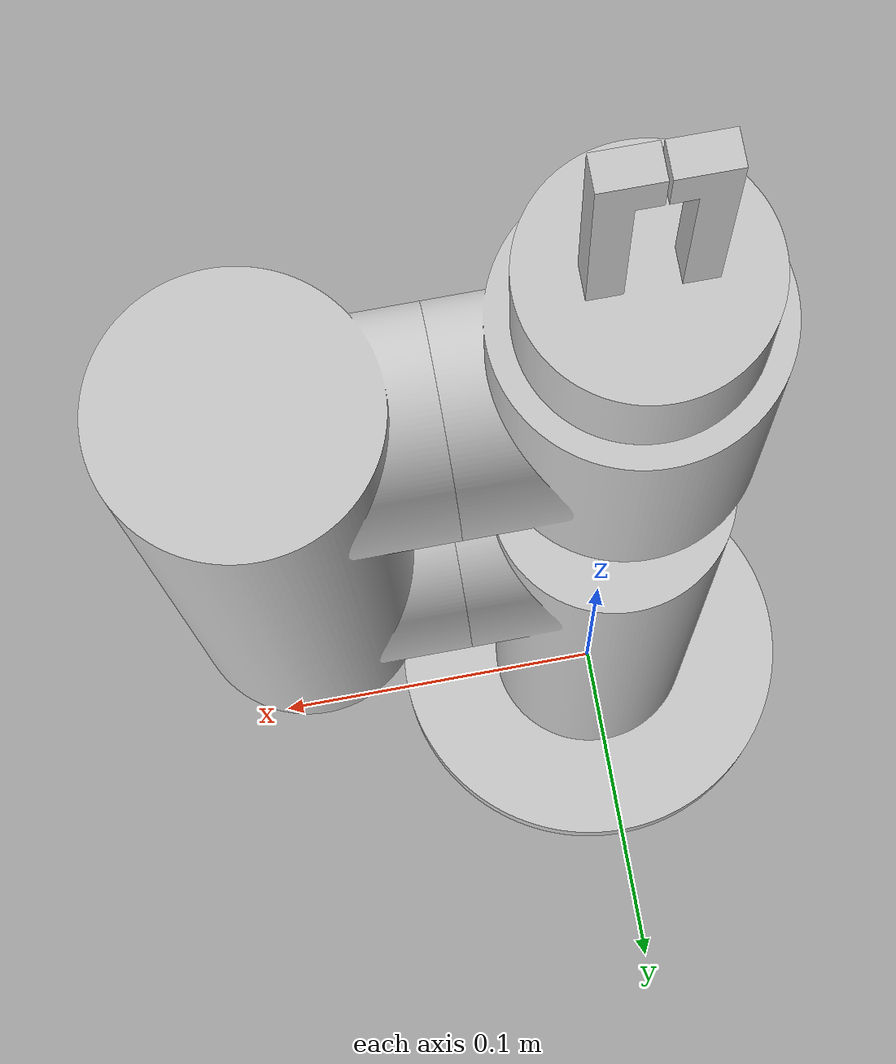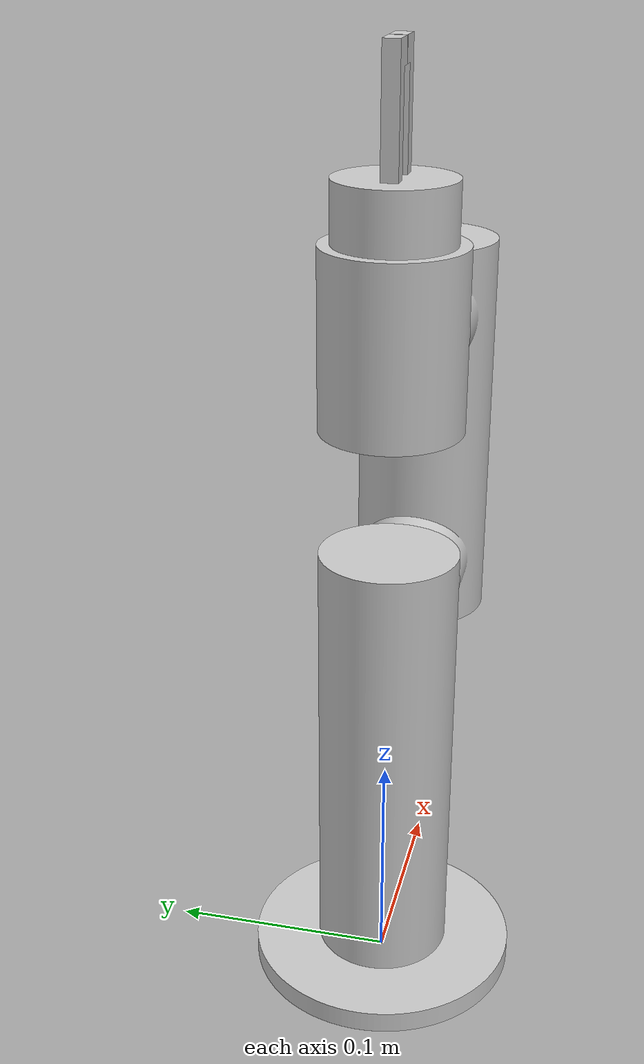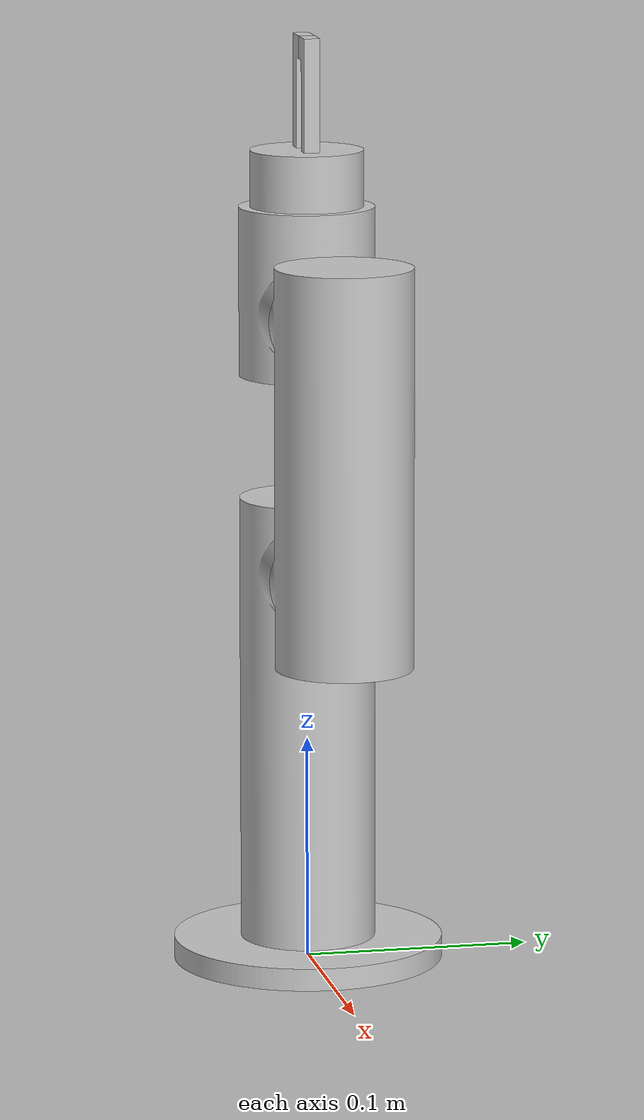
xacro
<?xml version="1.0" ?>
<robot name="manipulator_3r" xmlns:xacro="http://ros.org/wiki/xacro">
  <!--Generated by CROSS, a ROS Workbench for FreeCAD (https://github.com/galou/freecad.cross)-->
  <link name="world"/>
  <xacro:include filename="$(find robots_description)/urdf/gripper_macro.xacro"/>
  <xacro:gripper prefix=""/>
  <joint name="forearm_to_hand" type="fixed">
    <parent link="forearm"/>
    <child link="hand"/>
    <origin rpy="-0.0 1.5707963267948966 0.0" xyz="0.04 0.0 0.04"/>
  </joint>
  <xacro:include filename="$(find robots_description)/urdf/robot_3r_macro.xacro"/>
  <xacro:robot_3r prefix=""/>
  <joint name="world_to_base" type="fixed">
    <parent link="world"/>
    <child link="base"/>
    <origin rpy="0.0 -0.0 0.0" xyz="0.0 0.0 0.0"/>
  </joint>
</robot>

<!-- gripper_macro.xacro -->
<robot xmlns:xacro="http://www.ros.org/wiki/xacro">

  <xacro:macro name="gripper" params="prefix">

	  <link name="${prefix}hand">
	    <visual>
	      <!--hand_3r-->
	      <origin rpy="0.0 -0.0 0.0" xyz="0.0 0.0 0.0"/>
	      <geometry>
		<mesh filename="package://robots_description/meshes/hand_3r.dae"/>
	      </geometry>
	    </visual>
	    <inertial>
	      <mass value="0.0"/>
	      <origin rpy="0.0 -0.0 0.0" xyz="0.0 0.0 0.0"/>
	      <inertia ixx="0.0" ixy="0.0" ixz="0.0" iyy="0.0" iyz="0.0" izz="0.0"/>
	    </inertial>
	  </link>
	  <link name="${prefix}left_finger">
	    <visual>
	      <!--finger_3r-->
	      <origin rpy="3.141592653589793 1.5707963267948966 0.0" xyz="0.0 -0.0035 -0.03"/>
	      <geometry>
		<mesh filename="package://robots_description/meshes/finger_3r.dae"/>
	      </geometry>
	    </visual>
	    <inertial>
	      <mass value="0.0"/>
	      <origin rpy="0.0 -0.0 0.0" xyz="0.0 0.0 0.0"/>
	      <inertia ixx="0.0" ixy="0.0" ixz="0.0" iyy="0.0" iyz="0.0" izz="0.0"/>
	    </inertial>
	  </link>
	  <link name="${prefix}right_finger">
	    <visual>
	      <!--finger_3r-->
	      <origin rpy="-0.0 1.5707963267948966 0.0" xyz="0.0 0.0035 -0.03"/>
	      <geometry>
		<mesh filename="package://robots_description/meshes/finger_3r.dae"/>
	      </geometry>
	    </visual>
	    <inertial>
	      <mass value="0.0"/>
	      <origin rpy="0.0 -0.0 0.0" xyz="0.0 0.0 0.0"/>
	      <inertia ixx="0.0" ixy="0.0" ixz="0.0" iyy="0.0" iyz="0.0" izz="0.0"/>
	    </inertial>
	  </link>
	  <joint name="${prefix}hand_left_finger" type="prismatic">
	    <parent link="${prefix}hand"/>
	    <child link="${prefix}left_finger"/>
	    <origin rpy="-0.0 1.5707963267948966 0.0" xyz="0.0 0.0 0.03"/>
	    <axis xyz="0 0 1"/>
	    <limit effort="0.0" lower="0.0" upper="0.0" velocity="0.0"/>
	  </joint>
	  <joint name="${prefix}hand_right_finger" type="prismatic">
	    <parent link="${prefix}hand"/>
	    <child link="${prefix}right_finger"/>
	    <origin rpy="-0.0 -1.5707963267948961 0.0" xyz="0.0 0.0 0.03"/>
	    <axis xyz="0 0 1"/>
	    <limit effort="0.0" lower="0.0" upper="0.0" velocity="0.0"/>
	    <mimic joint="${prefix}hand_left_finger" multiplier="1.0" offset="0.0"/>
	  </joint>

    </xacro:macro>

</robot>

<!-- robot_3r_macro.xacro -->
<robot xmlns:xacro="http://www.ros.org/wiki/xacro">

  <xacro:macro name="robot_3r" params="prefix">

	  <link name="${prefix}base">
	    <visual>
	      <!--base_3r-->
	      <origin rpy="0.0 -0.0 0.0" xyz="0.0 0.0 0.0"/>
	      <geometry>
		<mesh filename="package://robots_description/meshes/base_3r.dae"/>
	      </geometry>
	    </visual>
	    <inertial>
	      <mass value="0.0"/>
	      <origin rpy="0.0 -0.0 0.0" xyz="0.0 0.0 0.0"/>
	      <inertia ixx="0.0" ixy="0.0" ixz="0.0" iyy="0.0" iyz="0.0" izz="0.0"/>
	    </inertial>
	  </link>
	  <link name="${prefix}shoulder">
	    <visual>
	      <!--shoulder_3r-->
	      <origin rpy="0.0 -0.0 0.0" xyz="0.0 0.0 0.0"/>
	      <geometry>
		<mesh filename="package://robots_description/meshes/shoulder_3r.dae"/>
	      </geometry>
	    </visual>
	    <inertial>
	      <mass value="0.0"/>
	      <origin rpy="0.0 -0.0 0.0" xyz="0.0 0.0 0.0"/>
	      <inertia ixx="0.0" ixy="0.0" ixz="0.0" iyy="0.0" iyz="0.0" izz="0.0"/>
	    </inertial>
	  </link>
	  <link name="${prefix}arm">
	    <visual>
	      <!--arm_3r-->
	      <origin rpy="-0.0 1.5707963267948966 0.0" xyz="-0.145 0.0 0.04"/>
	      <geometry>
		<mesh filename="package://robots_description/meshes/arm_3r.dae"/>
	      </geometry>
	    </visual>
	    <inertial>
	      <mass value="0.0"/>
	      <origin rpy="0.0 -0.0 0.0" xyz="0.0 0.0 0.0"/>
	      <inertia ixx="0.0" ixy="0.0" ixz="0.0" iyy="0.0" iyz="0.0" izz="0.0"/>
	    </inertial>
	  </link>
	  <link name="${prefix}forearm">
	    <visual>
	      <!--forearm_3r-->
	      <origin rpy="-0.0 1.5707963267948966 0.0" xyz="-0.03 0.0 0.04"/>
	      <geometry>
		<mesh filename="package://robots_description/meshes/forearm_3r.dae"/>
	      </geometry>
	    </visual>
	    <inertial>
	      <mass value="0.0"/>
	      <origin rpy="0.0 -0.0 0.0" xyz="0.0 0.0 0.0"/>
	      <inertia ixx="0.0" ixy="0.0" ixz="0.0" iyy="0.0" iyz="0.0" izz="0.0"/>
	    </inertial>
	  </link>
	  <joint name="${prefix}base_shoulder" type="revolute">
	    <parent link="${prefix}base"/>
	    <child link="${prefix}shoulder"/>
	    <origin rpy="0.0 -0.0 0.0" xyz="0.0 0.0 0.01"/>
	    <axis xyz="0 0 1"/>
	    <limit effort="0.0" lower="0.0" upper="0.0" velocity="0.0"/>
	  </joint>
	  <joint name="${prefix}shoulder_arm" type="revolute">
	    <parent link="${prefix}shoulder"/>
	    <child link="${prefix}arm"/>
	    <origin rpy="-0.0 1.5707963267948966 0.0" xyz="0.04 0.0 0.17"/>
	    <axis xyz="0 0 1"/>
	    <limit effort="0.0" lower="0.0" upper="0.0" velocity="0.0"/>
	  </joint>
	  <joint name="${prefix}arm_forearm" type="revolute">
	    <parent link="${prefix}arm"/>
	    <child link="${prefix}forearm"/>
	    <origin rpy="3.141592653589793 1.224646799147353e-16 3.141592653589793" xyz="-0.115 0.0 0.0"/>
	    <axis xyz="0 0 1"/>
	    <limit effort="0.0" lower="0.0" upper="0.0" velocity="0.0"/>
	  </joint>

  </xacro:macro>

</robot>
